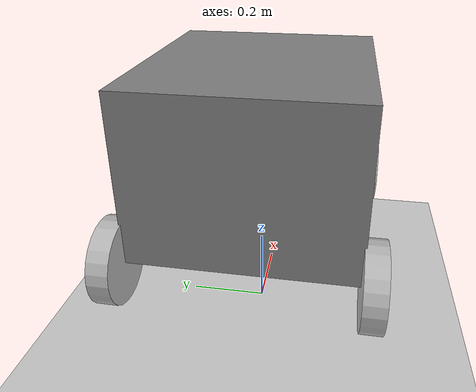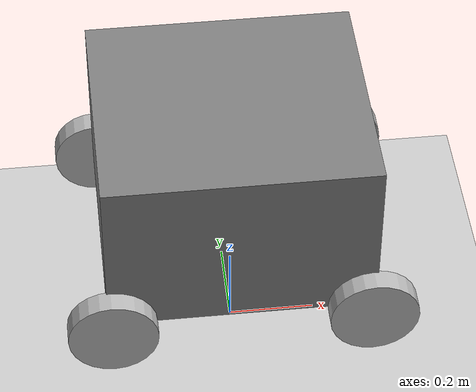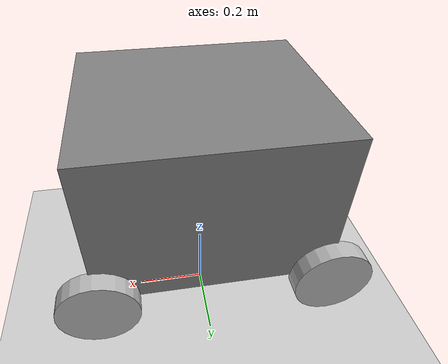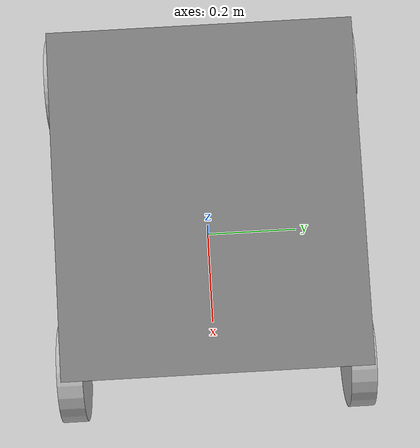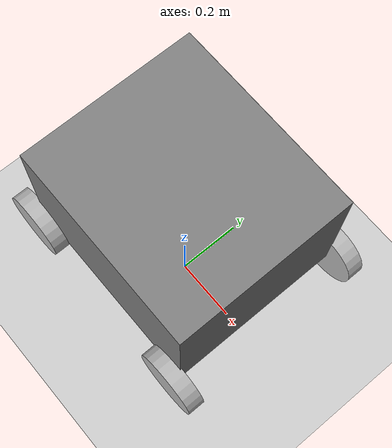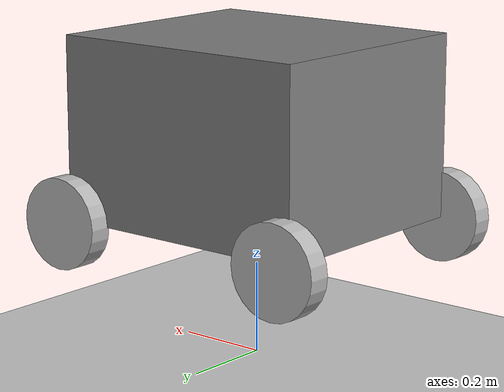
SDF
<?xml version="1.0" ?>
<sdf version="1.9">

  <world name="default">

    <plugin
      filename="gz-sim-physics-system"
      name="gz::sim::systems::Physics"/>

    <plugin
      filename="gz-sim-user-commands-system"
      name="gz::sim::systems::UserCommands"/>

    <plugin
      filename="gz-sim-scene-broadcaster-system"
      name="gz::sim::systems::SceneBroadcaster"/>

    <light name="sun" type="directional">
      <pose>0 0 10 0 0 0</pose>
      <direction>-0.5 0.1 -0.9</direction>
    </light>

    <model name="ground_plane">
      <static>true</static>

      <link name="link">

        <collision name="collision">
          <geometry>
            <plane>
              <normal>0 0 1</normal>
              <size>100 100</size>
            </plane>
          </geometry>
        </collision>

        <visual name="visual">
          <geometry>
            <plane>
              <normal>0 0 1</normal>
              <size>100 100</size>
            </plane>
          </geometry>
        </visual>

      </link>

    </model>
<include>

  <uri>file:///home/bao/robot_ws/src/my_robot_simulation/models/my_robot</uri>

  <pose>0 0 0.2 0 0 0</pose>

</include>
  </world>

</sdf>

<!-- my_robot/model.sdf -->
<sdf version="1.9">
  <model name="my_robot">

    <static>false</static>

    <link name="base_link">

      <pose>0 0 0.3 0 0 0</pose>

      <inertial>

        <mass>15.0</mass>

        <inertia>

          <ixx>0.5</ixx>
          <iyy>0.5</iyy>
          <izz>0.5</izz>

          <ixy>0</ixy>
          <ixz>0</ixz>
          <iyz>0</iyz>

        </inertia>

      </inertial>

      <collision name="collision">

        <geometry>

          <box>
            <size>0.6 0.53 0.4</size>
          </box>

        </geometry>

      </collision>

      <visual name="visual">

        <geometry>

          <box>
            <size>0.6 0.53 0.4</size>
          </box>

        </geometry>

        <material>

          <ambient>0.5 0.5 0.5 1</ambient>

          <diffuse>0.5 0.5 0.5 1</diffuse>

        </material>

      </visual>

    </link>
    <!-- ================= WHEELS ================= -->

<link name="front_left_wheel">
  <pose>0.29 0.285 0.1 1.5708 0 0</pose>

  <inertial>
    <mass>0.8</mass>
    <inertia>
      <ixx>0.01</ixx>
      <iyy>0.01</iyy>
      <izz>0.01</izz>
      <ixy>0</ixy>
      <ixz>0</ixz>
      <iyz>0</iyz>
    </inertia>
  </inertial>

  <collision name="collision">
    <geometry>
      <cylinder>
        <radius>0.1</radius>
        <length>0.05</length>
      </cylinder>
    </geometry>
  </collision>

  <visual name="visual">
    <geometry>
      <cylinder>
        <radius>0.1</radius>
        <length>0.05</length>
      </cylinder>
    </geometry>
  </visual>
</link>

<link name="front_right_wheel">
  <pose>0.29 -0.285 0.1 1.5708 0 0</pose>

  <inertial>
    <mass>0.8</mass>
    <inertia>
      <ixx>0.01</ixx>
      <iyy>0.01</iyy>
      <izz>0.01</izz>
      <ixy>0</ixy>
      <ixz>0</ixz>
      <iyz>0</iyz>
    </inertia>
  </inertial>

  <collision name="collision">
    <geometry>
      <cylinder>
        <radius>0.1</radius>
        <length>0.05</length>
      </cylinder>
    </geometry>
  </collision>

  <visual name="visual">
    <geometry>
      <cylinder>
        <radius>0.1</radius>
        <length>0.05</length>
      </cylinder>
    </geometry>
  </visual>
</link>

<link name="rear_left_wheel">
  <pose>-0.29 0.285 0.1 1.5708 0 0</pose>

  <inertial>
    <mass>0.8</mass>
    <inertia>
      <ixx>0.01</ixx>
      <iyy>0.01</iyy>
      <izz>0.01</izz>
      <ixy>0</ixy>
      <ixz>0</ixz>
      <iyz>0</iyz>
    </inertia>
  </inertial>

  <collision name="collision">
    <geometry>
      <cylinder>
        <radius>0.1</radius>
        <length>0.05</length>
      </cylinder>
    </geometry>
  </collision>

  <visual name="visual">
    <geometry>
      <cylinder>
        <radius>0.1</radius>
        <length>0.05</length>
      </cylinder>
    </geometry>
  </visual>
</link>

<link name="rear_right_wheel">
  <pose>-0.29 -0.285 0.1 1.5708 0 0</pose>

  <inertial>
    <mass>0.8</mass>
    <inertia>
      <ixx>0.01</ixx>
      <iyy>0.01</iyy>
      <izz>0.01</izz>
      <ixy>0</ixy>
      <ixz>0</ixz>
      <iyz>0</iyz>
    </inertia>
  </inertial>

  <collision name="collision">
    <geometry>
      <cylinder>
        <radius>0.1</radius>
        <length>0.05</length>
      </cylinder>
    </geometry>
  </collision>

  <visual name="visual">
    <geometry>
      <cylinder>
        <radius>0.1</radius>
        <length>0.05</length>
      </cylinder>
    </geometry>
  </visual>
</link>
      <!-- ================= JOINTS ================= -->

  <joint name="front_left_wheel_joint" type="revolute">

    <parent>base_link</parent>

    <child>front_left_wheel</child>

    <pose>0 0 0 0 0 0</pose>

    <axis>

      <xyz>0 1 0</xyz>

      <limit>
        <lower>-1000000</lower>
        <upper>1000000</upper>
      </limit>

    </axis>

  </joint>

  <joint name="front_right_wheel_joint" type="revolute">

    <parent>base_link</parent>

    <child>front_right_wheel</child>

    <pose>0 0 0 0 0 0</pose>

    <axis>

      <xyz>0 1 0</xyz>

      <limit>
        <lower>-1000000</lower>
        <upper>1000000</upper>
      </limit>

    </axis>

  </joint>

  <joint name="rear_left_wheel_joint" type="revolute">

    <parent>base_link</parent>

    <child>rear_left_wheel</child>

    <pose>0 0 0 0 0 0</pose>

    <axis>

      <xyz>0 1 0</xyz>

      <limit>
        <lower>-1000000</lower>
        <upper>1000000</upper>
      </limit>

    </axis>

  </joint>

  <joint name="rear_right_wheel_joint" type="revolute">

    <parent>base_link</parent>

    <child>rear_right_wheel</child>

    <pose>0 0 0 0 0 0</pose>

    <axis>

      <xyz>0 1 0</xyz>

      <limit>
        <lower>-1000000</lower>
        <upper>1000000</upper>
      </limit>

    </axis>

  </joint>
  </model>

</sdf>
